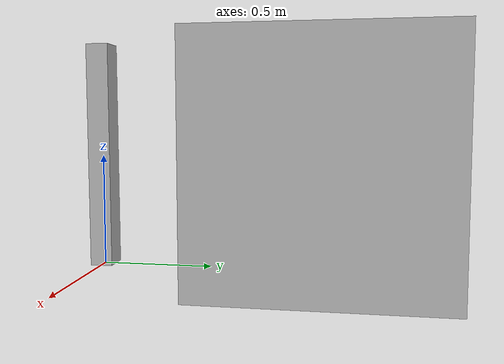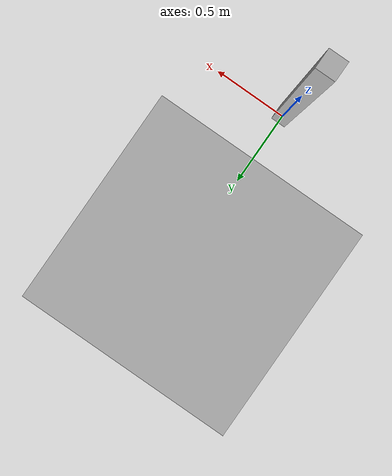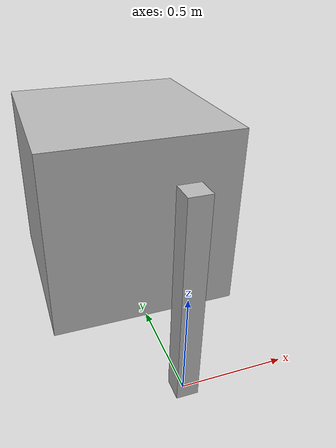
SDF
<!-- http://gazebosim.org/tutorials?tut=inertia&cat=build_robot -->
<sdf version="1.4">
  <model name="msd">
    <pose>0 0 0.5 0 0 0</pose>
    <static>false</static>

    <link name="base">
      <visual name="base_visual">
        <geometry>
          <box>
            <size>0.1 0.1 1</size>
          </box>
        </geometry>
      </visual>
    </link>

    <link name="mass">
      <pose relative_to='base_mass_joint'>0 1.0 0.0 0 -0 0</pose>
      <inertial>
        <mass>1.0</mass>
        <inertia>
          <ixx>0.083</ixx>
          <ixy>0.0</ixy>
          <ixz>0.0</ixz>
          <iyy>0.083</iyy>
          <iyz>0.0</iyz>
          <izz>0.083</izz>
        </inertia>
      </inertial>
      <collision name="collision">
        <geometry>
          <box>
            <size>1 1 1</size>
          </box>
        </geometry>
      </collision>
      <visual name="visual">
        <geometry>
          <box>
            <size>1 1 1</size>
          </box>
        </geometry>
      </visual>
    </link>

    <joint name="base_mass_joint" type="prismatic">
      <pose relative_to='base'>0.0 0.0 0.0 0 0 0</pose>
      <parent>base</parent>
      <child>mass</child>
      <axis>
        <xyz>0 1 0</xyz>
        <dynamics>
          <spring_reference>0.0</spring_reference>
          <spring_stiffness>100.0</spring_stiffness>
          <damping>0.5</damping>
        </dynamics>
        <limit>
          <lower>-1</lower>
          <upper>1</upper>
        </limit>
      </axis>
    </joint>
  </model>
</sdf>
